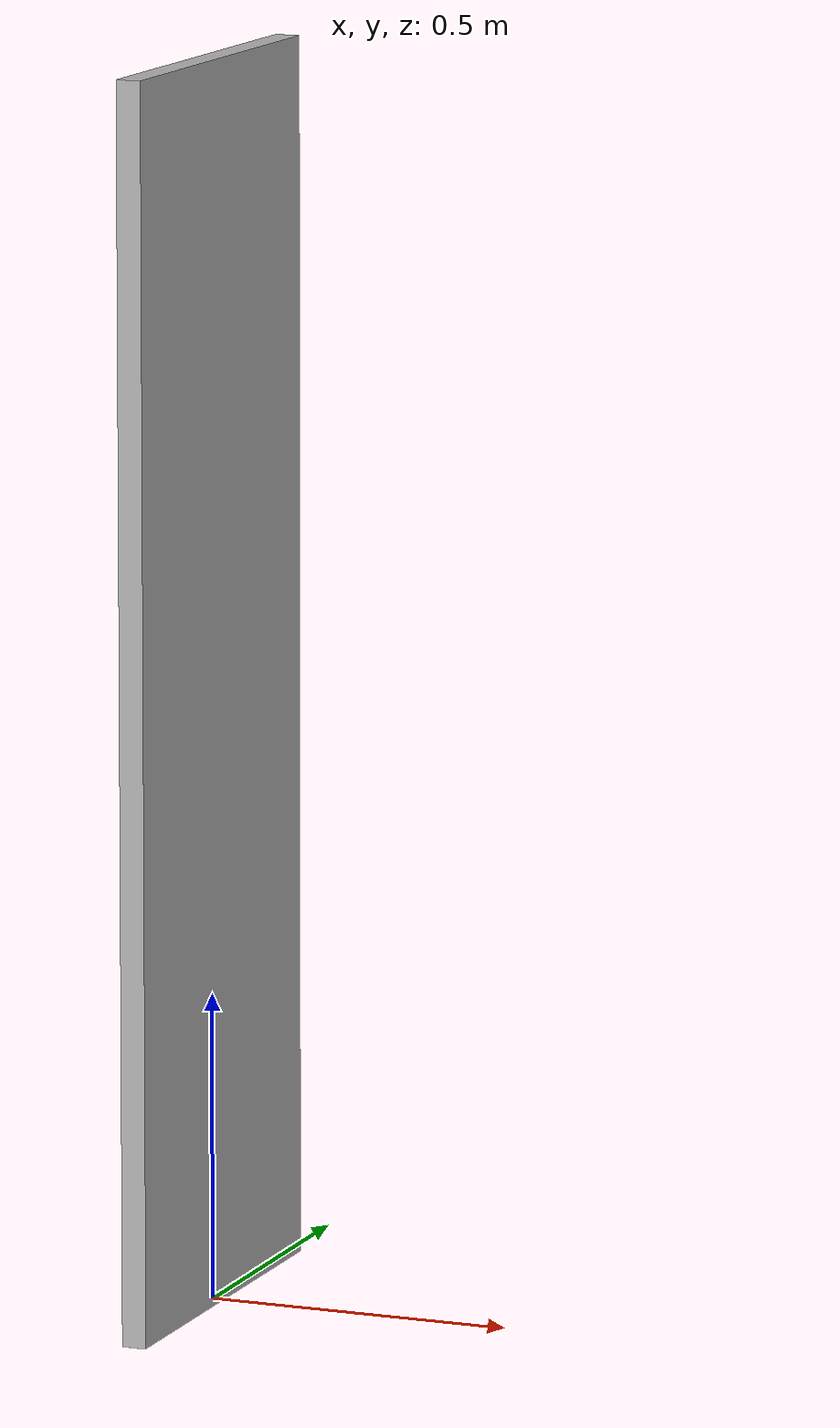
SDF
<?xml version="1.0" ?>
<sdf version="1.6">
  <model name="pcg_door_LHR_from_primitives_no_frame">
    <allow_auto_disable>0</allow_auto_disable>
    <pose frame="">0 0 1 0 -0 0</pose>
    <self_collide>0</self_collide>
    <joint name="hinge" type="revolute">
      <pose frame="">0 0.325 0 0 -0 0</pose>
      <axis>
        <xyz>0 0 1</xyz>
        <limit>
          <upper>0.0</upper>
          <lower>-1.57079632679</lower>
          <effort>-1.0</effort>
          <velocity>-1.0</velocity>
        </limit>
        <dynamics>
          <spring_reference>0.0</spring_reference>
          <spring_stiffness>0.0</spring_stiffness>
          <friction>0.0</friction>
          <damping>0.0</damping>
        </dynamics>
        <use_parent_model_frame>0</use_parent_model_frame>
      </axis>
      <parent>world</parent>
      <child>door</child>
    </joint>
    <static>0</static>
    <link name="door">
      <collision name="collision">
        <geometry>
          <box>
            <size>0.04 0.65 2</size>
          </box>
        </geometry>
        <max_contacts>20</max_contacts>
        <pose frame="">0 0 0 0 -0 0</pose>
      </collision>
      <visual name="visual">
        <geometry>
          <box>
            <size>0.04 0.65 2</size>
          </box>
        </geometry>
        <pose frame="">0 0 0 0 -0 0</pose>
        <cast_shadows>1</cast_shadows>
        <transparency>0.0</transparency>
      </visual>
      <pose frame="">0 0 0 0 -0 0</pose>
      <inertial>
        <pose frame="">0 0 0 0 -0 0</pose>
        <mass>10.0</mass>
        <inertia>
          <ixz>0.0</ixz>
          <ixx>3.68541666667</ixx>
          <ixy>0.0</ixy>
          <izz>0.353416666667</izz>
          <iyy>3.33466666667</iyy>
          <iyz>0.0</iyz>
        </inertia>
      </inertial>
    </link>
  </model>
</sdf>
